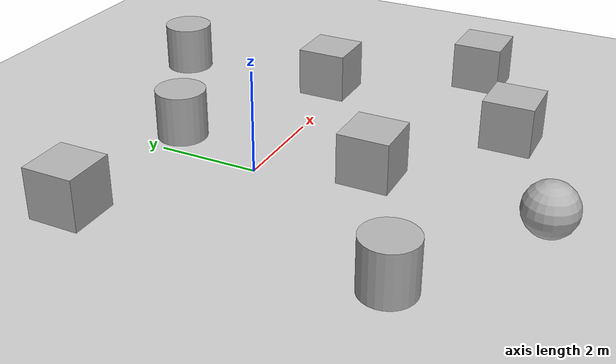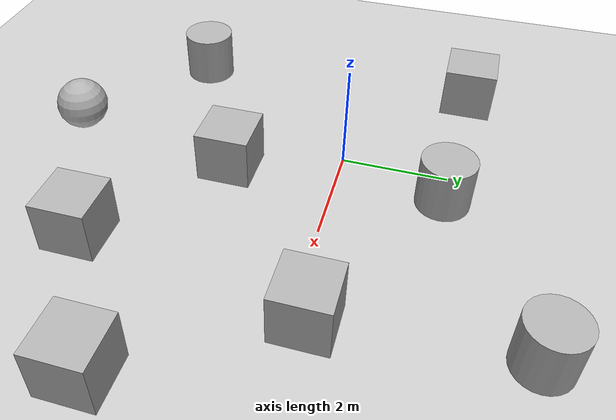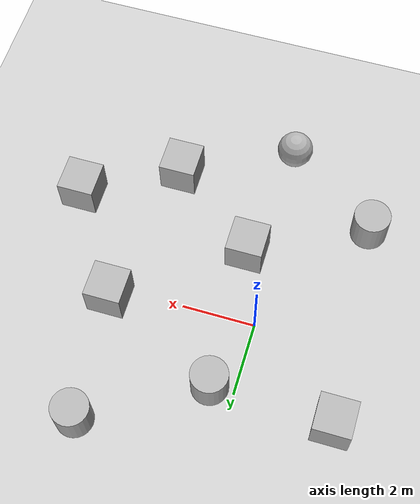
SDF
<sdf version='1.9'>
  <world name='empty'>
    <physics name='1ms' type='ignored'>
      <max_step_size>0.001</max_step_size>
      <real_time_factor>1</real_time_factor>
      <real_time_update_rate>1000</real_time_update_rate>
    </physics>
    <plugin name='gz::sim::systems::Physics' filename='ignition-gazebo-physics-system'/>
    <plugin name='gz::sim::systems::UserCommands' filename='ignition-gazebo-user-commands-system'/>
    <plugin name='gz::sim::systems::SceneBroadcaster' filename='ignition-gazebo-scene-broadcaster-system'/>
    <plugin name='gz::sim::systems::Contact' filename='ignition-gazebo-contact-system'/>
    <gravity>0 0 -9.8</gravity>
    <magnetic_field>6e-06 2.3e-05 -4.2e-05</magnetic_field>
    <atmosphere type='adiabatic'/>
    <scene>
      <ambient>0.4 0.4 0.4 1</ambient>
      <background>0.7 0.7 0.7 1</background>
      <shadows>true</shadows>
    </scene>
    <model name='ground_plane'>
      <static>true</static>
      <link name='link'>
        <collision name='collision'>
          <geometry>
            <plane>
              <normal>0 0 1</normal>
              <size>100 100</size>
            </plane>
          </geometry>
          <surface>
            <friction>
              <ode/>
            </friction>
            <bounce/>
            <contact/>
          </surface>
        </collision>
        <visual name='visual'>
          <geometry>
            <plane>
              <normal>0 0 1</normal>
              <size>100 100</size>
            </plane>
          </geometry>
          <material>
            <ambient>0.8 0.8 0.8 1</ambient>
            <diffuse>0.8 0.8 0.8 1</diffuse>
            <specular>0.8 0.8 0.8 1</specular>
          </material>
        </visual>
        <pose>0 0 0 0 -0 0</pose>
        <inertial>
          <pose>0 0 0 0 -0 0</pose>
          <mass>1</mass>
          <inertia>
            <ixx>1</ixx>
            <ixy>0</ixy>
            <ixz>0</ixz>
            <iyy>1</iyy>
            <iyz>0</iyz>
            <izz>1</izz>
          </inertia>
        </inertial>
        <enable_wind>false</enable_wind>
      </link>
      <pose>0 0 0 0 -0 0</pose>
      <self_collide>false</self_collide>
    </model>
    <model name='box'>
      <pose>0.770389 -2.02808 0.5 0 0 -0</pose>
      <link name='box_link'>
        <inertial>
          <inertia>
            <ixx>0.16666</ixx>
            <ixy>0</ixy>
            <ixz>0</ixz>
            <iyy>0.16666</iyy>
            <iyz>0</iyz>
            <izz>0.16666</izz>
          </inertia>
          <mass>1</mass>
          <pose>0 0 0 0 -0 0</pose>
        </inertial>
        <collision name='box_collision'>
          <geometry>
            <box>
              <size>1 1 1</size>
            </box>
          </geometry>
          <surface>
            <friction>
              <ode/>
            </friction>
            <bounce/>
            <contact/>
          </surface>
        </collision>
        <visual name='box_visual'>
          <geometry>
            <box>
              <size>1 1 1</size>
            </box>
          </geometry>
          <material>
            <ambient>0.3 0.3 0.3 1</ambient>
            <diffuse>0.7 0.7 0.7 1</diffuse>
            <specular>1 1 1 1</specular>
          </material>
        </visual>
        <pose>0 0 0 0 -0 0</pose>
        <enable_wind>false</enable_wind>
      </link>
      <static>false</static>
      <self_collide>false</self_collide>
    </model>
    <model name='box_0'>
      <pose>3.22797 -3.92452 0.5 0 0 -0</pose>
      <link name='box_link'>
        <inertial>
          <inertia>
            <ixx>0.16666</ixx>
            <ixy>0</ixy>
            <ixz>0</ixz>
            <iyy>0.16666</iyy>
            <iyz>0</iyz>
            <izz>0.16666</izz>
          </inertia>
          <mass>1</mass>
          <pose>0 0 0 0 -0 0</pose>
        </inertial>
        <collision name='box_collision'>
          <geometry>
            <box>
              <size>1 1 1</size>
            </box>
          </geometry>
          <surface>
            <friction>
              <ode/>
            </friction>
            <bounce/>
            <contact/>
          </surface>
        </collision>
        <visual name='box_visual'>
          <geometry>
            <box>
              <size>1 1 1</size>
            </box>
          </geometry>
          <material>
            <ambient>0.3 0.3 0.3 1</ambient>
            <diffuse>0.7 0.7 0.7 1</diffuse>
            <specular>1 1 1 1</specular>
          </material>
        </visual>
        <pose>0 0 0 0 -0 0</pose>
        <enable_wind>false</enable_wind>
      </link>
      <static>false</static>
      <self_collide>false</self_collide>
    </model>
    <model name='box_1'>
      <pose>-2.62936 2.11068 0.5 0 0 -0</pose>
      <link name='box_link'>
        <inertial>
          <inertia>
            <ixx>0.16666</ixx>
            <ixy>0</ixy>
            <ixz>0</ixz>
            <iyy>0.16666</iyy>
            <iyz>0</iyz>
            <izz>0.16666</izz>
          </inertia>
          <mass>1</mass>
          <pose>0 0 0 0 -0 0</pose>
        </inertial>
        <collision name='box_collision'>
          <geometry>
            <box>
              <size>1 1 1</size>
            </box>
          </geometry>
          <surface>
            <friction>
              <ode/>
            </friction>
            <bounce/>
            <contact/>
          </surface>
        </collision>
        <visual name='box_visual'>
          <geometry>
            <box>
              <size>1 1 1</size>
            </box>
          </geometry>
          <material>
            <ambient>0.3 0.3 0.3 1</ambient>
            <diffuse>0.7 0.7 0.7 1</diffuse>
            <specular>1 1 1 1</specular>
          </material>
        </visual>
        <pose>0 0 0 0 -0 0</pose>
        <enable_wind>false</enable_wind>
      </link>
      <static>false</static>
      <self_collide>false</self_collide>
    </model>
    <model name='cylinder'>
      <pose>-2.28322 -3.57951 0.499999 -0 0 0</pose>
      <link name='cylinder_link'>
        <inertial>
          <inertia>
            <ixx>0.14580000000000001</ixx>
            <ixy>0</ixy>
            <ixz>0</ixz>
            <iyy>0.14580000000000001</iyy>
            <iyz>0</iyz>
            <izz>0.125</izz>
          </inertia>
          <mass>1</mass>
          <pose>0 0 0 0 -0 0</pose>
        </inertial>
        <collision name='cylinder_collision'>
          <geometry>
            <cylinder>
              <radius>0.5</radius>
              <length>1</length>
            </cylinder>
          </geometry>
          <surface>
            <friction>
              <ode/>
            </friction>
            <bounce/>
            <contact/>
          </surface>
        </collision>
        <visual name='cylinder_visual'>
          <geometry>
            <cylinder>
              <radius>0.5</radius>
              <length>1</length>
            </cylinder>
          </geometry>
          <material>
            <ambient>0.3 0.3 0.3 1</ambient>
            <diffuse>0.7 0.7 0.7 1</diffuse>
            <specular>1 1 1 1</specular>
          </material>
        </visual>
        <pose>0 0 0 0 -0 0</pose>
        <enable_wind>false</enable_wind>
      </link>
      <static>false</static>
      <self_collide>false</self_collide>
    </model>
    <model name='box_2'>
      <pose>3.94007 0.28969 0.5 0 0 -0</pose>
      <link name='box_link'>
        <inertial>
          <inertia>
            <ixx>0.16666</ixx>
            <ixy>0</ixy>
            <ixz>0</ixz>
            <iyy>0.16666</iyy>
            <iyz>0</iyz>
            <izz>0.16666</izz>
          </inertia>
          <mass>1</mass>
          <pose>0 0 0 0 -0 0</pose>
        </inertial>
        <collision name='box_collision'>
          <geometry>
            <box>
              <size>1 1 1</size>
            </box>
          </geometry>
          <surface>
            <friction>
              <ode/>
            </friction>
            <bounce/>
            <contact/>
          </surface>
        </collision>
        <visual name='box_visual'>
          <geometry>
            <box>
              <size>1 1 1</size>
            </box>
          </geometry>
          <material>
            <ambient>0.3 0.3 0.3 1</ambient>
            <diffuse>0.7 0.7 0.7 1</diffuse>
            <specular>1 1 1 1</specular>
          </material>
        </visual>
        <pose>0 0 0 0 -0 0</pose>
        <enable_wind>false</enable_wind>
      </link>
      <static>false</static>
      <self_collide>false</self_collide>
    </model>
    <model name='cylinder_0'>
      <pose>0.648342 1.97381 0.499999 -0 -0 0</pose>
      <link name='cylinder_link'>
        <inertial>
          <inertia>
            <ixx>0.14580000000000001</ixx>
            <ixy>0</ixy>
            <ixz>0</ixz>
            <iyy>0.14580000000000001</iyy>
            <iyz>0</iyz>
            <izz>0.125</izz>
          </inertia>
          <mass>1</mass>
          <pose>0 0 0 0 -0 0</pose>
        </inertial>
        <collision name='cylinder_collision'>
          <geometry>
            <cylinder>
              <radius>0.5</radius>
              <length>1</length>
            </cylinder>
          </geometry>
          <surface>
            <friction>
              <ode/>
            </friction>
            <bounce/>
            <contact/>
          </surface>
        </collision>
        <visual name='cylinder_visual'>
          <geometry>
            <cylinder>
              <radius>0.5</radius>
              <length>1</length>
            </cylinder>
          </geometry>
          <material>
            <ambient>0.3 0.3 0.3 1</ambient>
            <diffuse>0.7 0.7 0.7 1</diffuse>
            <specular>1 1 1 1</specular>
          </material>
        </visual>
        <pose>0 0 0 0 -0 0</pose>
        <enable_wind>false</enable_wind>
      </link>
      <static>false</static>
      <self_collide>false</self_collide>
    </model>
    <model name='box_3'>
      <pose>5.7154 -2.55137 0.5 0 0 -0</pose>
      <link name='box_link'>
        <inertial>
          <inertia>
            <ixx>0.16666</ixx>
            <ixy>0</ixy>
            <ixz>0</ixz>
            <iyy>0.16666</iyy>
            <iyz>0</iyz>
            <izz>0.16666</izz>
          </inertia>
          <mass>1</mass>
          <pose>0 0 0 0 -0 0</pose>
        </inertial>
        <collision name='box_collision'>
          <geometry>
            <box>
              <size>1 1 1</size>
            </box>
          </geometry>
          <surface>
            <friction>
              <ode/>
            </friction>
            <bounce/>
            <contact/>
          </surface>
        </collision>
        <visual name='box_visual'>
          <geometry>
            <box>
              <size>1 1 1</size>
            </box>
          </geometry>
          <material>
            <ambient>0.3 0.3 0.3 1</ambient>
            <diffuse>0.7 0.7 0.7 1</diffuse>
            <specular>1 1 1 1</specular>
          </material>
        </visual>
        <pose>0 0 0 0 -0 0</pose>
        <enable_wind>false</enable_wind>
      </link>
      <static>false</static>
      <self_collide>false</self_collide>
    </model>
    <model name='cylinder_1'>
      <pose>3.69179 3.74708 0.499999 -0 -0 0</pose>
      <link name='cylinder_link'>
        <inertial>
          <inertia>
            <ixx>0.14580000000000001</ixx>
            <ixy>0</ixy>
            <ixz>0</ixz>
            <iyy>0.14580000000000001</iyy>
            <iyz>0</iyz>
            <izz>0.125</izz>
          </inertia>
          <mass>1</mass>
          <pose>0 0 0 0 -0 0</pose>
        </inertial>
        <collision name='cylinder_collision'>
          <geometry>
            <cylinder>
              <radius>0.5</radius>
              <length>1</length>
            </cylinder>
          </geometry>
          <surface>
            <friction>
              <ode/>
            </friction>
            <bounce/>
            <contact/>
          </surface>
        </collision>
        <visual name='cylinder_visual'>
          <geometry>
            <cylinder>
              <radius>0.5</radius>
              <length>1</length>
            </cylinder>
          </geometry>
          <material>
            <ambient>0.3 0.3 0.3 1</ambient>
            <diffuse>0.7 0.7 0.7 1</diffuse>
            <specular>1 1 1 1</specular>
          </material>
        </visual>
        <pose>0 0 0 0 -0 0</pose>
        <enable_wind>false</enable_wind>
      </link>
      <static>false</static>
      <self_collide>false</self_collide>
    </model>
    <model name='sphere'>
      <pose>0.299611 -5.36827 0.5 0 -0 0</pose>
      <link name='sphere_link'>
        <inertial>
          <inertia>
            <ixx>0.10000000000000001</ixx>
            <ixy>0</ixy>
            <ixz>0</ixz>
            <iyy>0.10000000000000001</iyy>
            <iyz>0</iyz>
            <izz>0.10000000000000001</izz>
          </inertia>
          <mass>1</mass>
          <pose>0 0 0 0 -0 0</pose>
        </inertial>
        <collision name='sphere_collision'>
          <geometry>
            <sphere>
              <radius>0.5</radius>
            </sphere>
          </geometry>
          <surface>
            <friction>
              <ode/>
            </friction>
            <bounce/>
            <contact/>
          </surface>
        </collision>
        <visual name='sphere_visual'>
          <geometry>
            <sphere>
              <radius>0.5</radius>
            </sphere>
          </geometry>
          <material>
            <ambient>0.3 0.3 0.3 1</ambient>
            <diffuse>0.7 0.7 0.7 1</diffuse>
            <specular>1 1 1 1</specular>
          </material>
        </visual>
        <pose>0 0 0 0 -0 0</pose>
        <enable_wind>false</enable_wind>
      </link>
      <static>false</static>
      <self_collide>false</self_collide>
    </model>
    <light name='sun' type='directional'>
      <pose>0 0 10 0 -0 0</pose>
      <cast_shadows>true</cast_shadows>
      <intensity>1</intensity>
      <direction>-0.5 0.1 -0.9</direction>
      <diffuse>0.8 0.8 0.8 1</diffuse>
      <specular>0.2 0.2 0.2 1</specular>
      <attenuation>
        <range>1000</range>
        <linear>0.01</linear>
        <constant>0.90000000000000002</constant>
        <quadratic>0.001</quadratic>
      </attenuation>
      <spot>
        <inner_angle>0</inner_angle>
        <outer_angle>0</outer_angle>
        <falloff>0</falloff>
      </spot>
    </light>
  </world>
</sdf>
